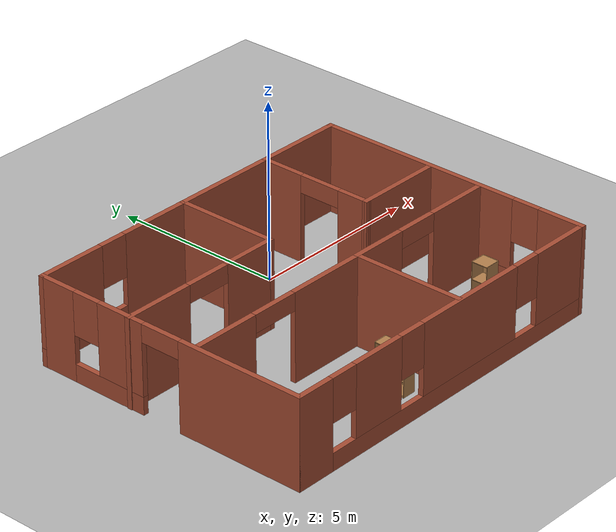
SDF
<sdf version="1.9">
 <world name="default">
  <gravity>0 0 -9.8</gravity>
  <magnetic_field>6e-06 2.3e-05 -4.2e-05</magnetic_field>
  <atmosphere type="adiabatic"/>
  <physics type="ode">
   <max_step_size>0.001</max_step_size>
   <real_time_factor>1</real_time_factor>
   <real_time_update_rate>1000</real_time_update_rate>
  </physics>
  <scene><ambient>0.4 0.4 0.4 1</ambient><background>0.7 0.7 0.7 1</background><shadows>true</shadows></scene>
  <model name="world_smaller">
   <pose>-1.40689 -2.78287 0 0 -0 0</pose>
   <link name="Wall_10">
    <collision name="Wall_10_Collision">
     <geometry><box><size>3.25 0.15 2.5</size></box></geometry>
     <pose>0 0 1.25 0 -0 0</pose>
    </collision>
    <visual name="Wall_10_Visual">
     <pose>0 0 1.25 0 -0 0</pose>
     <geometry><box><size>3.25 0.15 2.5</size></box></geometry>
     <material>
      <script><uri>file://media/materials/scripts/gazebo.material</uri><name>Gazebo/Bricks</name></script>
      <ambient>0.333333 0.333333 1 1</ambient>
     </material>
     <meta><layer>0</layer></meta>
    </visual>
    <pose>0.487422 -2.44012 0 0 0 -1.5708</pose>
    <inertial>
     <mass>1</mass>
     <inertia><ixx>1</ixx><ixy>0</ixy><ixz>0</ixz><iyy>1</iyy><iyz>0</iyz><izz>1</izz></inertia>
    </inertial>
   </link>
   <link name="Wall_13">
    <pose>2.78742 -0.890119 0 0 -0 0</pose>
    <visual name="Wall_13_Visual_0">
     <pose>-1.5418 0 1.25 0 -0 0</pose>
     <geometry><box><size>1.6664 0.15 2.5</size></box></geometry>
     <material>
      <script><uri>file://media/materials/scripts/gazebo.material</uri><name>Gazebo/Bricks</name></script>
      <ambient>0 0.666667 0.498039 1</ambient>
     </material>
     <meta><layer>0</layer></meta>
    </visual>
    <collision name="Wall_13_Collision_0">
     <geometry><box><size>1.6664 0.15 2.5</size></box></geometry>
     <pose>-1.5418 0 1.25 0 -0 0</pose>
    </collision>
    <visual name="Wall_13_Visual_1">
     <pose>1.43544 0 1.25 0 -0 0</pose>
     <geometry><box><size>1.87912 0.15 2.5</size></box></geometry>
     <material>
      <script><uri>file://media/materials/scripts/gazebo.material</uri><name>Gazebo/Bricks</name></script>
      <ambient>0 0.666667 0.498039 1</ambient>
     </material>
     <meta><layer>0</layer></meta>
    </visual>
    <collision name="Wall_13_Collision_1">
     <geometry><box><size>1.87912 0.15 2.5</size></box></geometry>
     <pose>1.43544 0 1.25 0 -0 0</pose>
    </collision>
    <visual name="Wall_13_Visual_2">
     <pose>-0.106356 0 2.25 0 -0 0</pose>
     <geometry><box><size>1.20448 0.15 0.5</size></box></geometry>
     <material>
      <script><uri>file://media/materials/scripts/gazebo.material</uri><name>Gazebo/Bricks</name></script>
      <ambient>0 0.666667 0.498039 1</ambient>
     </material>
     <meta><layer>0</layer></meta>
    </visual>
    <collision name="Wall_13_Collision_2">
     <geometry><box><size>1.20448 0.15 0.5</size></box></geometry>
     <pose>-0.106356 0 2.25 0 -0 0</pose>
    </collision>
    <inertial>
     <mass>1</mass>
     <inertia><ixx>1</ixx><ixy>0</ixy><ixz>0</ixz><iyy>1</iyy><iyz>0</iyz><izz>1</izz></inertia>
    </inertial>
   </link>
   <link name="Wall_15">
    <pose>2.6763 2.37202 0 0 0 -1.5708</pose>
    <visual name="Wall_15_Visual_0">
     <pose>-1.08859 0 1.25 0 -0 0</pose>
     <geometry><box><size>1.32281 0.15 2.5</size></box></geometry>
     <material>
      <script><uri>file://media/materials/scripts/gazebo.material</uri><name>Gazebo/Bricks</name></script>
      <ambient>1 0.666667 1 1</ambient>
     </material>
     <meta><layer>0</layer></meta>
    </visual>
    <collision name="Wall_15_Collision_0">
     <geometry><box><size>1.32281 0.15 2.5</size></box></geometry>
     <pose>-1.08859 0 1.25 0 -0 0</pose>
    </collision>
    <visual name="Wall_15_Visual_1">
     <pose>1.2772 0 1.25 0 -0 0</pose>
     <geometry><box><size>0.945597 0.15 2.5</size></box></geometry>
     <material>
      <script><uri>file://media/materials/scripts/gazebo.material</uri><name>Gazebo/Bricks</name></script>
      <ambient>1 0.666667 1 1</ambient>
     </material>
     <meta><layer>0</layer></meta>
    </visual>
    <collision name="Wall_15_Collision_1">
     <geometry><box><size>0.945597 0.15 2.5</size></box></geometry>
     <pose>1.2772 0 1.25 0 -0 0</pose>
    </collision>
    <visual name="Wall_15_Visual_2">
     <pose>0.188607 0 2.25 0 -0 0</pose>
     <geometry><box><size>1.23159 0.15 0.5</size></box></geometry>
     <material>
      <script><uri>file://media/materials/scripts/gazebo.material</uri><name>Gazebo/Bricks</name></script>
      <ambient>1 0.666667 1 1</ambient>
     </material>
     <meta><layer>0</layer></meta>
    </visual>
    <collision name="Wall_15_Collision_2">
     <geometry><box><size>1.23159 0.15 0.5</size></box></geometry>
     <pose>0.188607 0 2.25 0 -0 0</pose>
    </collision>
    <inertial>
     <mass>1</mass>
     <inertia><ixx>1</ixx><ixy>0</ixy><ixz>0</ixz><iyy>1</iyy><iyz>0</iyz><izz>1</izz></inertia>
    </inertial>
   </link>
   <link name="Wall_16">
    <collision name="Wall_16_Collision">
     <geometry><box><size>2.60247 0.15 2.5</size></box></geometry>
     <pose>0 0 1.25 0 -0 0</pose>
    </collision>
    <visual name="Wall_16_Visual">
     <pose>0 0 1.25 0 -0 0</pose>
     <geometry><box><size>2.60247 0.15 2.5</size></box></geometry>
     <material>
      <script><uri>file://media/materials/scripts/gazebo.material</uri><name>Gazebo/Bricks</name></script>
      <ambient>1 0.666667 1 1</ambient>
     </material>
     <meta><layer>0</layer></meta>
    </visual>
    <pose>3.90253 0.697093 0 0 -0 5.9e-05</pose>
    <inertial>
     <mass>1</mass>
     <inertia><ixx>1</ixx><ixy>0</ixy><ixz>0</ixz><iyy>1</iyy><iyz>0</iyz><izz>1</izz></inertia>
    </inertial>
   </link>
   <link name="Wall_20">
    <pose>-2.75998 1.18909 0 0 -0 0</pose>
    <visual name="Wall_20_Visual_0">
     <pose>-1.47705 0 1.25 0 -0 0</pose>
     <geometry><box><size>2.04589 0.15 2.5</size></box></geometry>
     <material>
      <script><uri>file://media/materials/scripts/gazebo.material</uri><name>Gazebo/Bricks</name></script>
      <ambient>0 0.666667 0.498039 1</ambient>
     </material>
     <meta><layer>0</layer></meta>
    </visual>
    <collision name="Wall_20_Collision_0">
     <geometry><box><size>2.04589 0.15 2.5</size></box></geometry>
     <pose>-1.47705 0 1.25 0 -0 0</pose>
    </collision>
    <visual name="Wall_20_Visual_1">
     <pose>1.67593 0 1.25 0 -0 0</pose>
     <geometry><box><size>1.64814 0.15 2.5</size></box></geometry>
     <material>
      <script><uri>file://media/materials/scripts/gazebo.material</uri><name>Gazebo/Bricks</name></script>
      <ambient>0 0.666667 0.498039 1</ambient>
     </material>
     <meta><layer>0</layer></meta>
    </visual>
    <collision name="Wall_20_Collision_1">
     <geometry><box><size>1.64814 0.15 2.5</size></box></geometry>
     <pose>1.67593 0 1.25 0 -0 0</pose>
    </collision>
    <visual name="Wall_20_Visual_2">
     <pose>0.198879 0 2.25 0 -0 0</pose>
     <geometry><box><size>1.30597 0.15 0.5</size></box></geometry>
     <material>
      <script><uri>file://media/materials/scripts/gazebo.material</uri><name>Gazebo/Bricks</name></script>
      <ambient>0 0.666667 0.498039 1</ambient>
     </material>
     <meta><layer>0</layer></meta>
    </visual>
    <collision name="Wall_20_Collision_2">
     <geometry><box><size>1.30597 0.15 0.5</size></box></geometry>
     <pose>0.198879 0 2.25 0 -0 0</pose>
    </collision>
    <inertial>
     <mass>1</mass>
     <inertia><ixx>1</ixx><ixy>0</ixy><ixz>0</ixz><iyy>1</iyy><iyz>0</iyz><izz>1</izz></inertia>
    </inertial>
   </link>
   <link name="Wall_21">
    <collision name="Wall_21_Collision">
     <geometry><box><size>3 0.15 2.5</size></box></geometry>
     <pose>0 0 1.25 0 -0 0</pose>
    </collision>
    <visual name="Wall_21_Visual">
     <pose>0 0 1.25 0 -0 0</pose>
     <geometry><box><size>3 0.15 2.5</size></box></geometry>
     <material>
      <script><uri>file://media/materials/scripts/gazebo.material</uri><name>Gazebo/Bricks</name></script>
      <ambient>0 0.666667 0.498039 1</ambient>
     </material>
     <meta><layer>0</layer></meta>
    </visual>
    <pose>-0.334983 2.61409 0 0 -0 1.5708</pose>
    <inertial>
     <mass>1</mass>
     <inertia><ixx>1</ixx><ixy>0</ixy><ixz>0</ixz><iyy>1</iyy><iyz>0</iyz><izz>1</izz></inertia>
    </inertial>
   </link>
   <link name="Wall_3">
    <pose>0.009983 -4.05 0 0 -0 0</pose>
    <visual name="Wall_3_Visual_0">
     <pose>-4.68391 0 1.25 0 -0 0</pose>
     <geometry><box><size>1.13217 0.15 2.5</size></box></geometry>
     <material>
      <script><uri>file://media/materials/scripts/gazebo.material</uri><name>Gazebo/Bricks</name></script>
      <ambient>0.333333 0.333333 1 1</ambient>
     </material>
     <meta><layer>0</layer></meta>
    </visual>
    <collision name="Wall_3_Collision_0">
     <geometry><box><size>1.13217 0.15 2.5</size></box></geometry>
     <pose>-4.68391 0 1.25 0 -0 0</pose>
    </collision>
    <visual name="Wall_3_Visual_1">
     <pose>0.566086 0 0.25 0 -0 0</pose>
     <geometry><box><size>9.36783 0.15 0.5</size></box></geometry>
     <material>
      <script><uri>file://media/materials/scripts/gazebo.material</uri><name>Gazebo/Bricks</name></script>
      <ambient>0.333333 0.333333 1 1</ambient>
     </material>
     <meta><layer>0</layer></meta>
    </visual>
    <collision name="Wall_3_Collision_1">
     <geometry><box><size>9.36783 0.15 0.5</size></box></geometry>
     <pose>0.566086 0 0.25 0 -0 0</pose>
    </collision>
    <visual name="Wall_3_Visual_2">
     <pose>-2.51432 0 1.5 0 -0 0</pose>
     <geometry><box><size>1.60702 0.15 2</size></box></geometry>
     <material>
      <script><uri>file://media/materials/scripts/gazebo.material</uri><name>Gazebo/Bricks</name></script>
      <ambient>0.333333 0.333333 1 1</ambient>
     </material>
     <meta><layer>0</layer></meta>
    </visual>
    <collision name="Wall_3_Collision_2">
     <geometry><box><size>1.60702 0.15 2</size></box></geometry>
     <pose>-2.51432 0 1.5 0 -0 0</pose>
    </collision>
    <visual name="Wall_3_Visual_3">
     <pose>0.820412 0 1.5 0 -0 0</pose>
     <geometry><box><size>3.46244 0.15 2</size></box></geometry>
     <material>
      <script><uri>file://media/materials/scripts/gazebo.material</uri><name>Gazebo/Bricks</name></script>
      <ambient>0.333333 0.333333 1 1</ambient>
     </material>
     <meta><layer>0</layer></meta>
    </visual>
    <collision name="Wall_3_Collision_3">
     <geometry><box><size>3.46244 0.15 2</size></box></geometry>
     <pose>0.820412 0 1.5 0 -0 0</pose>
    </collision>
    <visual name="Wall_3_Visual_4">
     <pose>4.30082 0 1.5 0 -0 0</pose>
     <geometry><box><size>1.89837 0.15 2</size></box></geometry>
     <material>
      <script><uri>file://media/materials/scripts/gazebo.material</uri><name>Gazebo/Bricks</name></script>
      <ambient>0.333333 0.333333 1 1</ambient>
     </material>
     <meta><layer>0</layer></meta>
    </visual>
    <collision name="Wall_3_Collision_4">
     <geometry><box><size>1.89837 0.15 2</size></box></geometry>
     <pose>4.30082 0 1.5 0 -0 0</pose>
    </collision>
    <visual name="Wall_3_Visual_5">
     <pose>-3.71783 0 1.9 0 -0 0</pose>
     <geometry><box><size>0.8 0.15 1.2</size></box></geometry>
     <material>
      <script><uri>file://media/materials/scripts/gazebo.material</uri><name>Gazebo/Bricks</name></script>
      <ambient>0.333333 0.333333 1 1</ambient>
     </material>
     <meta><layer>0</layer></meta>
    </visual>
    <collision name="Wall_3_Collision_5">
     <geometry><box><size>0.8 0.15 1.2</size></box></geometry>
     <pose>-3.71783 0 1.9 0 -0 0</pose>
    </collision>
    <visual name="Wall_3_Visual_6">
     <pose>-1.31081 0 1.9 0 -0 0</pose>
     <geometry><box><size>0.8 0.15 1.2</size></box></geometry>
     <material>
      <script><uri>file://media/materials/scripts/gazebo.material</uri><name>Gazebo/Bricks</name></script>
      <ambient>0.333333 0.333333 1 1</ambient>
     </material>
     <meta><layer>0</layer></meta>
    </visual>
    <collision name="Wall_3_Collision_6">
     <geometry><box><size>0.8 0.15 1.2</size></box></geometry>
     <pose>-1.31081 0 1.9 0 -0 0</pose>
    </collision>
    <visual name="Wall_3_Visual_7">
     <pose>2.95163 0 1.9 0 -0 0</pose>
     <geometry><box><size>0.8 0.15 1.2</size></box></geometry>
     <material>
      <script><uri>file://media/materials/scripts/gazebo.material</uri><name>Gazebo/Bricks</name></script>
      <ambient>0.333333 0.333333 1 1</ambient>
     </material>
     <meta><layer>0</layer></meta>
    </visual>
    <collision name="Wall_3_Collision_7">
     <geometry><box><size>0.8 0.15 1.2</size></box></geometry>
     <pose>2.95163 0 1.9 0 -0 0</pose>
    </collision>
    <inertial>
     <mass>1</mass>
     <inertia><ixx>1</ixx><ixy>0</ixy><ixz>0</ixz><iyy>1</iyy><iyz>0</iyz><izz>1</izz></inertia>
    </inertial>
   </link>
   <link name="Wall_5">
    <pose>5.18498 0 0 0 -0 1.5708</pose>
    <visual name="Wall_5_Visual_0">
     <pose>-3.44251 0 1.25 0 -0 0</pose>
     <geometry><box><size>1.36499 0.15 2.5</size></box></geometry>
     <material>
      <script><uri>file://media/materials/scripts/gazebo.material</uri><name>Gazebo/Bricks</name></script>
      <ambient>1 0.666667 1 1</ambient>
     </material>
     <meta><layer>0</layer></meta>
    </visual>
    <collision name="Wall_5_Collision_0">
     <geometry><box><size>1.36499 0.15 2.5</size></box></geometry>
     <pose>-3.44251 0 1.25 0 -0 0</pose>
    </collision>
    <visual name="Wall_5_Visual_1">
     <pose>0.682494 0 0.25 0 -0 0</pose>
     <geometry><box><size>6.88501 0.15 0.5</size></box></geometry>
     <material>
      <script><uri>file://media/materials/scripts/gazebo.material</uri><name>Gazebo/Bricks</name></script>
      <ambient>1 0.666667 1 1</ambient>
     </material>
     <meta><layer>0</layer></meta>
    </visual>
    <collision name="Wall_5_Collision_1">
     <geometry><box><size>6.88501 0.15 0.5</size></box></geometry>
     <pose>0.682494 0 0.25 0 -0 0</pose>
    </collision>
    <visual name="Wall_5_Visual_2">
     <pose>1.08249 0 1.5 0 -0 0</pose>
     <geometry><box><size>6.08501 0.15 2</size></box></geometry>
     <material>
      <script><uri>file://media/materials/scripts/gazebo.material</uri><name>Gazebo/Bricks</name></script>
      <ambient>1 0.666667 1 1</ambient>
     </material>
     <meta><layer>0</layer></meta>
    </visual>
    <collision name="Wall_5_Collision_2">
     <geometry><box><size>6.08501 0.15 2</size></box></geometry>
     <pose>1.08249 0 1.5 0 -0 0</pose>
    </collision>
    <visual name="Wall_5_Visual_3">
     <pose>-2.36001 0 1.9 0 -0 0</pose>
     <geometry><box><size>0.8 0.15 1.2</size></box></geometry>
     <material>
      <script><uri>file://media/materials/scripts/gazebo.material</uri><name>Gazebo/Bricks</name></script>
      <ambient>1 0.666667 1 1</ambient>
     </material>
     <meta><layer>0</layer></meta>
    </visual>
    <collision name="Wall_5_Collision_3">
     <geometry><box><size>0.8 0.15 1.2</size></box></geometry>
     <pose>-2.36001 0 1.9 0 -0 0</pose>
    </collision>
    <inertial>
     <mass>1</mass>
     <inertia><ixx>1</ixx><ixy>0</ixy><ixz>0</ixz><iyy>1</iyy><iyz>0</iyz><izz>1</izz></inertia>
    </inertial>
   </link>
   <link name="Wall_6">
    <pose>0.009983 4.05 0 0 -0 3.14159</pose>
    <visual name="Wall_6_Visual_0">
     <pose>-1.39455 0 1.25 0 -0 0</pose>
     <geometry><box><size>7.71091 0.15 2.5</size></box></geometry>
     <material>
      <script><uri>file://media/materials/scripts/gazebo.material</uri><name>Gazebo/Bricks</name></script>
      <ambient>1 0.666667 1 1</ambient>
     </material>
     <meta><layer>0</layer></meta>
    </visual>
    <collision name="Wall_6_Collision_0">
     <geometry><box><size>7.71091 0.15 2.5</size></box></geometry>
     <pose>-1.39455 0 1.25 0 -0 0</pose>
    </collision>
    <visual name="Wall_6_Visual_1">
     <pose>3.85545 0 0.25 0 -0 0</pose>
     <geometry><box><size>2.78909 0.15 0.5</size></box></geometry>
     <material>
      <script><uri>file://media/materials/scripts/gazebo.material</uri><name>Gazebo/Bricks</name></script>
      <ambient>1 0.666667 1 1</ambient>
     </material>
     <meta><layer>0</layer></meta>
    </visual>
    <collision name="Wall_6_Collision_1">
     <geometry><box><size>2.78909 0.15 0.5</size></box></geometry>
     <pose>3.85545 0 0.25 0 -0 0</pose>
    </collision>
    <visual name="Wall_6_Visual_2">
     <pose>4.25545 0 1.5 0 -0 0</pose>
     <geometry><box><size>1.98909 0.15 2</size></box></geometry>
     <material>
      <script><uri>file://media/materials/scripts/gazebo.material</uri><name>Gazebo/Bricks</name></script>
      <ambient>1 0.666667 1 1</ambient>
     </material>
     <meta><layer>0</layer></meta>
    </visual>
    <collision name="Wall_6_Collision_2">
     <geometry><box><size>1.98909 0.15 2</size></box></geometry>
     <pose>4.25545 0 1.5 0 -0 0</pose>
    </collision>
    <visual name="Wall_6_Visual_3">
     <pose>2.86091 0 1.9 0 -0 0</pose>
     <geometry><box><size>0.8 0.15 1.2</size></box></geometry>
     <material>
      <script><uri>file://media/materials/scripts/gazebo.material</uri><name>Gazebo/Bricks</name></script>
      <ambient>1 0.666667 1 1</ambient>
     </material>
     <meta><layer>0</layer></meta>
    </visual>
    <collision name="Wall_6_Collision_3">
     <geometry><box><size>0.8 0.15 1.2</size></box></geometry>
     <pose>2.86091 0 1.9 0 -0 0</pose>
    </collision>
    <inertial>
     <mass>1</mass>
     <inertia><ixx>1</ixx><ixy>0</ixy><ixz>0</ixz><iyy>1</iyy><iyz>0</iyz><izz>1</izz></inertia>
    </inertial>
   </link>
   <link name="Wall_7">
    <pose>-5.16502 0 0 0 0 -1.5708</pose>
    <visual name="Wall_7_Visual_0">
     <pose>-3.55278 0 1.25 0 -0 0</pose>
     <geometry><box><size>1.14445 0.15 2.5</size></box></geometry>
     <material>
      <script><uri>file://media/materials/scripts/gazebo.material</uri><name>Gazebo/Bricks</name></script>
      <ambient>0.435294 0.796078 0.67451 1</ambient>
     </material>
     <meta><layer>0</layer></meta>
    </visual>
    <collision name="Wall_7_Collision_0">
     <geometry><box><size>1.14445 0.15 2.5</size></box></geometry>
     <pose>-3.55278 0 1.25 0 -0 0</pose>
    </collision>
    <visual name="Wall_7_Visual_1">
     <pose>2.27011 0 1.25 0 -0 0</pose>
     <geometry><box><size>3.70978 0.15 2.5</size></box></geometry>
     <material>
      <script><uri>file://media/materials/scripts/gazebo.material</uri><name>Gazebo/Bricks</name></script>
      <ambient>0.435294 0.796078 0.67451 1</ambient>
     </material>
     <meta><layer>0</layer></meta>
    </visual>
    <collision name="Wall_7_Collision_1">
     <geometry><box><size>3.70978 0.15 2.5</size></box></geometry>
     <pose>2.27011 0 1.25 0 -0 0</pose>
    </collision>
    <visual name="Wall_7_Visual_2">
     <pose>-1.86422 0 0.25 0 -0 0</pose>
     <geometry><box><size>2.23266 0.15 0.5</size></box></geometry>
     <material>
      <script><uri>file://media/materials/scripts/gazebo.material</uri><name>Gazebo/Bricks</name></script>
      <ambient>0.435294 0.796078 0.67451 1</ambient>
     </material>
     <meta><layer>0</layer></meta>
    </visual>
    <collision name="Wall_7_Collision_2">
     <geometry><box><size>2.23266 0.15 0.5</size></box></geometry>
     <pose>-1.86422 0 0.25 0 -0 0</pose>
    </collision>
    <visual name="Wall_7_Visual_3">
     <pose>-1.46422 0 1.5 0 -0 0</pose>
     <geometry><box><size>1.43266 0.15 2</size></box></geometry>
     <material>
      <script><uri>file://media/materials/scripts/gazebo.material</uri><name>Gazebo/Bricks</name></script>
      <ambient>0.435294 0.796078 0.67451 1</ambient>
     </material>
     <meta><layer>0</layer></meta>
    </visual>
    <collision name="Wall_7_Collision_3">
     <geometry><box><size>1.43266 0.15 2</size></box></geometry>
     <pose>-1.46422 0 1.5 0 -0 0</pose>
    </collision>
    <visual name="Wall_7_Visual_4">
     <pose>-2.58055 0 1.9 0 -0 0</pose>
     <geometry><box><size>0.8 0.15 1.2</size></box></geometry>
     <material>
      <script><uri>file://media/materials/scripts/gazebo.material</uri><name>Gazebo/Bricks</name></script>
      <ambient>0.435294 0.796078 0.67451 1</ambient>
     </material>
     <meta><layer>0</layer></meta>
    </visual>
    <collision name="Wall_7_Collision_4">
     <geometry><box><size>0.8 0.15 1.2</size></box></geometry>
     <pose>-2.58055 0 1.9 0 -0 0</pose>
    </collision>
    <visual name="Wall_7_Visual_5">
     <pose>-0.166335 0 2.25 0 -0 0</pose>
     <geometry><box><size>1.16312 0.15 0.5</size></box></geometry>
     <material>
      <script><uri>file://media/materials/scripts/gazebo.material</uri><name>Gazebo/Bricks</name></script>
      <ambient>0.435294 0.796078 0.67451 1</ambient>
     </material>
     <meta><layer>0</layer></meta>
    </visual>
    <collision name="Wall_7_Collision_5">
     <geometry><box><size>1.16312 0.15 0.5</size></box></geometry>
     <pose>-0.166335 0 2.25 0 -0 0</pose>
    </collision>
    <inertial>
     <mass>1</mass>
     <inertia><ixx>1</ixx><ixy>0</ixy><ixz>0</ixz><iyy>1</iyy><iyz>0</iyz><izz>1</izz></inertia>
    </inertial>
   </link>
   <link name="Wall_9">
    <pose>-2.31258 -0.890119 0 0 -0 0</pose>
    <visual name="Wall_9_Visual_0">
     <pose>-1.88101 0 1.25 0 -0 0</pose>
     <geometry><box><size>1.98799 0.15 2.5</size></box></geometry>
     <material>
      <script><uri>file://media/materials/scripts/gazebo.material</uri><name>Gazebo/Bricks</name></script>
      <ambient>0.333333 0.333333 1 1</ambient>
     </material>
     <meta><layer>0</layer></meta>
    </visual>
    <collision name="Wall_9_Collision_0">
     <geometry><box><size>1.98799 0.15 2.5</size></box></geometry>
     <pose>-1.88101 0 1.25 0 -0 0</pose>
    </collision>
    <visual name="Wall_9_Visual_1">
     <pose>1.67598 0 1.25 0 -0 0</pose>
     <geometry><box><size>2.39805 0.15 2.5</size></box></geometry>
     <material>
      <script><uri>file://media/materials/scripts/gazebo.material</uri><name>Gazebo/Bricks</name></script>
      <ambient>0.333333 0.333333 1 1</ambient>
     </material>
     <meta><layer>0</layer></meta>
    </visual>
    <collision name="Wall_9_Collision_1">
     <geometry><box><size>2.39805 0.15 2.5</size></box></geometry>
     <pose>1.67598 0 1.25 0 -0 0</pose>
    </collision>
    <visual name="Wall_9_Visual_2">
     <pose>-0.20503 0 2.25 0 -0 0</pose>
     <geometry><box><size>1.36397 0.15 0.5</size></box></geometry>
     <material>
      <script><uri>file://media/materials/scripts/gazebo.material</uri><name>Gazebo/Bricks</name></script>
      <ambient>0.333333 0.333333 1 1</ambient>
     </material>
     <meta><layer>0</layer></meta>
    </visual>
    <collision name="Wall_9_Collision_2">
     <geometry><box><size>1.36397 0.15 0.5</size></box></geometry>
     <pose>-0.20503 0 2.25 0 -0 0</pose>
    </collision>
    <inertial>
     <mass>1</mass>
     <inertia><ixx>1</ixx><ixy>0</ixy><ixz>0</ixz><iyy>1</iyy><iyz>0</iyz><izz>1</izz></inertia>
    </inertial>
   </link>
   <static>true</static>
  </model>
  <model name="Bookshelf">
   <static>true</static>
   <link name="link">
    <inertial>
     <mass>1</mass>
     <inertia><ixx>1</ixx><ixy>0</ixy><ixz>0</ixz><iyy>1</iyy><iyz>0</iyz><izz>1</izz></inertia>
    </inertial>
    <collision name="back">
     <pose>0 0.005 0.6 0 0 0</pose>
     <geometry><box><size>0.9 0.01 1.2</size></box></geometry>
    </collision>
    <visual name="visual1">
     <pose>0 0.005 0.6 0 0 0</pose>
     <geometry><box><size>0.9 0.01 1.2</size></box></geometry>
     <material>
      <diffuse>1 1 1 1</diffuse>
      <script><uri>file://media/materials/scripts/gazebo.material</uri><name>Gazebo/Wood</name></script>
      <pbr>
       <metal>
        <albedo_map>https://fuel.gazebosim.org/1.0/openrobotics/models/bookshelf/4/files/bookshelf_diffuse.jpg</albedo_map>
       </metal>
      </pbr>
     </material>
    </visual>
    <collision name="left_side">
     <pose>0.45 -0.195 0.6 0 0 0</pose>
     <geometry><box><size>0.02 0.4 1.2</size></box></geometry>
    </collision>
    <visual name="visual2">
     <pose>0.45 -0.195 0.6 0 0 0</pose>
     <geometry><box><size>0.02 0.4 1.2</size></box></geometry>
     <material>
      <diffuse>1 1 1 1</diffuse>
      <script><uri>file://media/materials/scripts/gazebo.material</uri><name>Gazebo/Wood</name></script>
      <pbr>
       <metal>
        <albedo_map>https://fuel.gazebosim.org/1.0/openrobotics/models/bookshelf/4/files/bookshelf_diffuse.jpg</albedo_map>
       </metal>
      </pbr>
     </material>
    </visual>
    <collision name="right_side">
     <pose>-0.45 -0.195 0.6 0 0 0</pose>
     <geometry><box><size>0.02 0.4 1.2</size></box></geometry>
    </collision>
    <visual name="visual3">
     <pose>-0.45 -0.195 0.6 0 0 0</pose>
     <geometry><box><size>0.02 0.4 1.2</size></box></geometry>
     <material>
      <diffuse>1 1 1 1</diffuse>
      <script><uri>file://media/materials/scripts/gazebo.material</uri><name>Gazebo/Wood</name></script>
      <pbr>
       <metal>
        <albedo_map>https://fuel.gazebosim.org/1.0/openrobotics/models/bookshelf/4/files/bookshelf_diffuse.jpg</albedo_map>
       </metal>
      </pbr>
     </material>
    </visual>
    <collision name="bottom">
     <pose>0 -0.195 0.03 0 0 0</pose>
     <geometry><box><size>0.88 0.4 0.06</size></box></geometry>
    </collision>
    <visual name="visual4">
     <pose>0 -0.195 0.03 0 0 0</pose>
     <geometry><box><size>0.88 0.4 0.06</size></box></geometry>
     <material>
      <diffuse>1 1 1 1</diffuse>
      <script><uri>file://media/materials/scripts/gazebo.material</uri><name>Gazebo/Wood</name></script>
      <pbr>
       <metal>
        <albedo_map>https://fuel.gazebosim.org/1.0/openrobotics/models/bookshelf/4/files/bookshelf_diffuse.jpg</albedo_map>
       </metal>
      </pbr>
     </material>
    </visual>
    <collision name="top">
     <pose>0 -0.195 1.19 0 0 0</pose>
     <geometry><box><size>0.88 0.4 0.02</size></box></geometry>
    </collision>
    <visual name="visual5">
     <pose>0 -0.195 1.19 0 0 0</pose>
     <geometry><box><size>0.88 0.4 0.02</size></box></geometry>
     <material>
      <diffuse>1 1 1 1</diffuse>
      <script><uri>file://media/materials/scripts/gazebo.material</uri><name>Gazebo/Wood</name></script>
      <pbr>
       <metal>
        <albedo_map>https://fuel.gazebosim.org/1.0/openrobotics/models/bookshelf/4/files/bookshelf_diffuse.jpg</albedo_map>
       </metal>
      </pbr>
     </material>
    </visual>
    <collision name="low_shelf">
     <pose>0 -0.195 0.43 0 0 0</pose>
     <geometry><box><size>0.88 0.4 0.02</size></box></geometry>
    </collision>
    <visual name="visual6">
     <pose>0 -0.195 0.43 0 0 0</pose>
     <geometry><box><size>0.88 0.4 0.02</size></box></geometry>
     <material>
      <diffuse>1 1 1 1</diffuse>
      <script><uri>file://media/materials/scripts/gazebo.material</uri><name>Gazebo/Wood</name></script>
      <pbr>
       <metal>
        <albedo_map>https://fuel.gazebosim.org/1.0/openrobotics/models/bookshelf/4/files/bookshelf_diffuse.jpg</albedo_map>
       </metal>
      </pbr>
     </material>
    </visual>
    <collision name="high_shelf">
     <pose>0 -0.195 0.8 0 0 0</pose>
     <geometry><box><size>0.88 0.4 0.02</size></box></geometry>
    </collision>
    <visual name="visual7">
     <pose>0 -0.195 0.8 0 0 0</pose>
     <geometry><box><size>0.88 0.4 0.02</size></box></geometry>
     <material>
      <diffuse>1 1 1 1</diffuse>
      <script><uri>file://media/materials/scripts/gazebo.material</uri><name>Gazebo/Wood</name></script>
      <pbr>
       <metal>
        <albedo_map>https://fuel.gazebosim.org/1.0/openrobotics/models/bookshelf/4/files/bookshelf_diffuse.jpg</albedo_map>
       </metal>
      </pbr>
     </material>
    </visual>
   </link>
   <pose>-1.66686 -5.65781 0 0 0 -1.5709</pose>
  </model>
  <model name="ground_plane">
   <static>true</static>
   <link name="link">
    <collision name="collision">
     <geometry><plane><normal>0 0 1</normal><size>100 100</size></plane></geometry>
     <surface><friction><ode><mu>100</mu><mu2>50</mu2></ode></friction></surface>
    </collision>
    <visual name="visual">
     <cast_shadows>false</cast_shadows>
     <geometry><plane><normal>0 0 1</normal><size>100 100</size></plane></geometry>
     <material>
      <ambient>0.3 0.3 0.3 1</ambient>
      <diffuse>0.7 0.7 0.7 1</diffuse>
      <specular>0.01 0.01 0.01 1</specular>
     </material>
    </visual>
    <inertial>
     <mass>1</mass>
     <inertia><ixx>1</ixx><ixy>0</ixy><ixz>0</ixz><iyy>1</iyy><iyz>0</iyz><izz>1</izz></inertia>
    </inertial>
   </link>
   <pose>0.3078 2.84673 0 0 -0 0</pose>
  </model>
  <model name="cabinet">
   <static>true</static>
   <link name="cabinet_bottom_plate">
    <inertial>
     <pose>0 0 -1 0 -0 0</pose>
     <inertia>
      <ixx>2.0499999999999998</ixx>
      <ixy>0</ixy>
      <ixz>0</ixz>
      <iyy>2.0499999999999998</iyy>
      <iyz>0</iyz>
      <izz>2.0499999999999998</izz>
     </inertia>
     <mass>25</mass>
    </inertial>
    <collision name="cabinet_bottom_plate_geom">
     <pose>0 0 0.010000 0 0 0</pose>
     <geometry><box><size>0.45 0.45 0.02</size></box></geometry>
    </collision>
    <visual name="cabinet_bottom_plate_geom_visual">
     <pose>0 0 0.010000 0 0 0</pose>
     <geometry><box><size>0.45 0.45 0.02</size></box></geometry>
     <material>
      <script><uri>file://media/materials/scripts/gazebo.material</uri><name>Gazebo/Wood</name></script>
     </material>
    </visual>
    <collision name="cabinet_bottom_plate_geom_cabinet_back_plate">
     <pose>0.235000 0 0.510000 0 0 0</pose>
     <geometry><box><size>0.02 0.45 1.02</size></box></geometry>
    </collision>
    <visual name="cabinet_bottom_plate_geom_cabinet_back_plate_visual">
     <pose>0.235000 0 0.510000 0 0 0</pose>
     <geometry><box><size>0.02 0.45 1.02</size></box></geometry>
     <material>
      <script><uri>file://media/materials/scripts/gazebo.material</uri><name>Gazebo/Wood</name></script>
     </material>
    </visual>
    <collision name="cabinet_bottom_plate_geom_cabinet_left_plate">
     <pose>0 0.235000 0.510000 0 0 0</pose>
     <geometry><box><size>0.45 0.02 1.02</size></box></geometry>
    </collision>
    <visual name="cabinet_bottom_plate_geom_cabinet_left_plate_visual">
     <pose>0 0.235000 0.510000 0 0 0</pose>
     <geometry><box><size>0.45 0.02 1.02</size></box></geometry>
     <material>
      <script><uri>file://media/materials/scripts/gazebo.material</uri><name>Gazebo/Wood</name></script>
     </material>
    </visual>
    <collision name="cabinet_bottom_plate_geom_cabinet_middle_plate">
     <pose>0 0 0.510000 0 0 0</pose>
     <geometry><box><size>0.45 0.45 0.02</size></box></geometry>
    </collision>
    <visual name="cabinet_bottom_plate_geom_cabinet_middle_plate_visual">
     <pose>0 0 0.510000 0 0 0</pose>
     <geometry><box><size>0.45 0.45 0.02</size></box></geometry>
     <material>
      <script><uri>file://media/materials/scripts/gazebo.material</uri><name>Gazebo/Wood</name></script>
     </material>
    </visual>
    <collision name="cabinet_bottom_plate_geom_cabinet_right_plate">
     <pose>0 -0.235000 0.510000 0 0 0</pose>
     <geometry><box><size>0.45 0.02 1.02</size></box></geometry>
    </collision>
    <visual name="cabinet_bottom_plate_geom_cabinet_right_plate_visual">
     <pose>0 -0.235000 0.510000 0 0 0</pose>
     <geometry><box><size>0.45 0.02 1.02</size></box></geometry>
     <material>
      <script><uri>file://media/materials/scripts/gazebo.material</uri><name>Gazebo/Wood</name></script>
     </material>
    </visual>
    <collision name="cabinet_bottom_plate_geom_cabinet_top_plate">
     <pose>0 0 1.010000 0 0 0</pose>
     <geometry><box><size>0.45 0.45 0.02</size></box></geometry>
    </collision>
    <visual name="cabinet_bottom_plate_geom_cabinet_top_plate_visual">
     <pose>0 0 1.010000 0 0 0</pose>
     <geometry><box><size>0.45 0.45 0.02</size></box></geometry>
     <material>
      <script><uri>file://media/materials/scripts/gazebo.material</uri><name>Gazebo/Wood</name></script>
     </material>
    </visual>
   </link>
   <pose>2.90427 -4.57797 0 0 -0 0</pose>
  </model>
  <light name="sun" type="directional">
   <pose>12.1132 -17.2087 10 0 -0 0</pose>
   <intensity>1</intensity>
   <direction>-0.5 0.1 -0.9</direction>
   <diffuse>0.8 0.8 0.8 1</diffuse>
   <specular>0.2 0.2 0.2 1</specular>
   <attenuation>
    <range>1000</range>
    <linear>0.01</linear>
    <constant>0.90000000000000002</constant>
    <quadratic>0.001</quadratic>
   </attenuation>
   <spot><inner_angle>0</inner_angle><outer_angle>0</outer_angle><falloff>0</falloff></spot>
  </light>
 </world>
</sdf>
